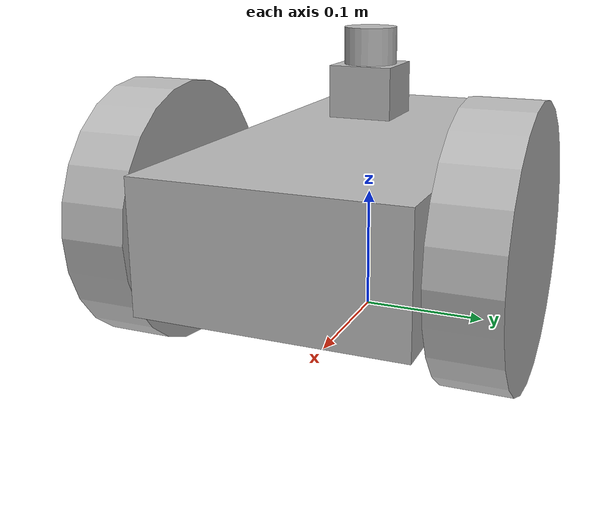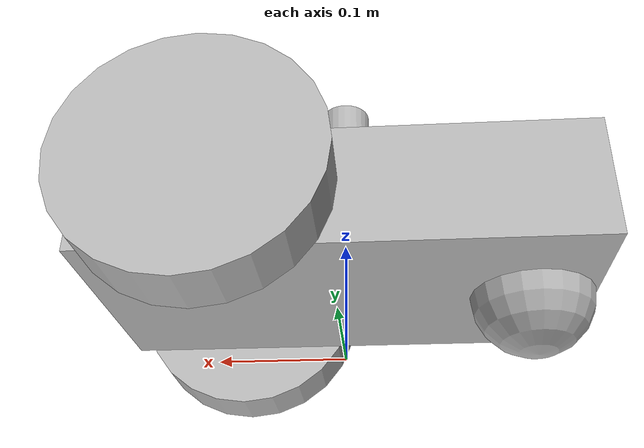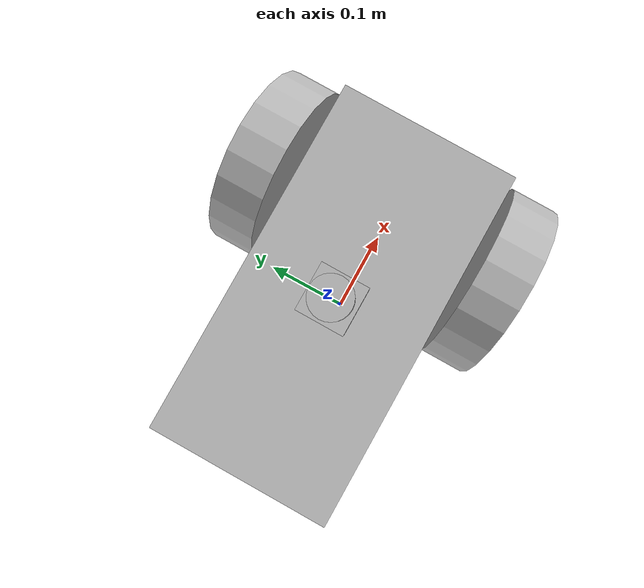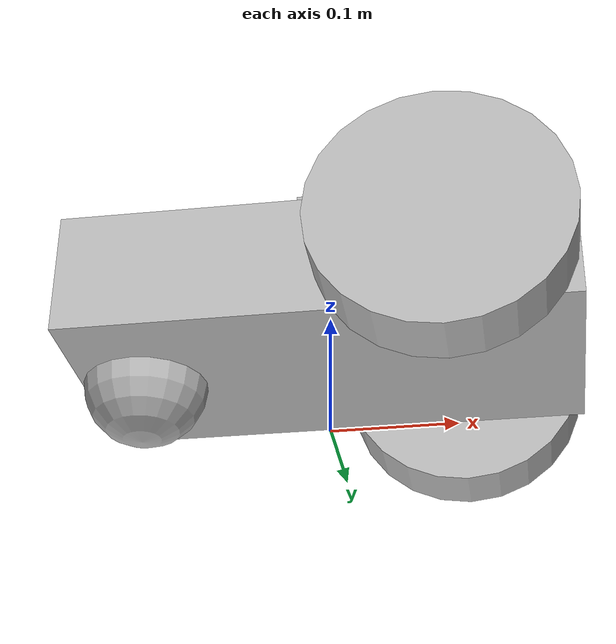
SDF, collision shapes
<?xml version='1.0'?>

<sdf version='1.4'>

    <model name="rover">

        <static>false</static>
        <link name='base_link'>
            <pose>0.0 0.0 0.1 0.0 0.0 0.0</pose>

            <visual name='visual'>
                <pose>0.0 0.0 0.0 0.0 0.0 0.0</pose>
                <geometry>
                    <box>
                        <size>0.4 0.2 0.1</size>
                    </box>
                </geometry>
            </visual>

            <collision name='collision'>
                <geometry>
                    <box>
                        <size>0.4 0.2 0.1</size>
                    </box>
                </geometry>
            </collision>

            <inertial>
                <mass>10.0</mass>
                <pose>0.0 0.0 0.1 0.0 0.0 0.0</pose>
                <inertia>
                    <ixx>0.5</ixx>
                    <iyy>1.0</iyy>
                    <izz>0.1</izz>
                </inertia>
            </inertial>

            <visual name='caster_visual'>
                <pose>-0.15 0.0 -0.05 0.0 0.0 0.0</pose>
                <geometry>
                    <sphere>
                        <radius>0.05</radius>
                    </sphere>
                </geometry>
            </visual>

            <collision name='caster_collision'>
                <pose>-0.15 0.0 -0.05 0.0 0.0 0.0</pose>
                <geometry>
                    <sphere>
                        <radius>0.05</radius>
                    </sphere>
                </geometry>

                <surface>
                    <friction>
                        <ode>
                            <mu>0.0</mu>
                            <mu2>0.0</mu2>
                            <slip1>1.0</slip1>
                            <slip2>1.0</slip2>
                        </ode>
                    </friction>
                </surface>
            </collision>
        </link>

        <link name="left_wheel_link">
            <pose>0.1 0.13 0.1 0.0 1.5707 1.5707</pose>
            <visual name="visual">
                <geometry>
                    <cylinder>
                        <radius>0.1</radius>
                        <length>0.05</length>
                    </cylinder>
                </geometry>
            </visual>

            <collision name="collision">
                <geometry>
                    <cylinder>
                        <radius>0.1</radius>
                        <length>0.05</length>
                    </cylinder>
                </geometry>
            </collision>
        </link>

        <link name="right_wheel_link">
            <pose>0.1 -0.13 0.1 0.0 1.5707 1.5707</pose>

            <visual name="visual">
                <geometry>
                    <cylinder>
                        <radius>0.1</radius>
                        <length>0.05</length>
                    </cylinder>
                </geometry>
            </visual>

            <collision name="collision">
                <geometry>
                    <cylinder>
                        <radius>0.1</radius>
                        <length>0.05</length>
                    </cylinder>
                </geometry>
            </collision>
        </link>

        <link name="laser_link">
            <inertial>
                <mass>0.1</mass>
            </inertial>
            <pose>0.0 0.0 0.2 0.0 0.0 3.141</pose>

            <visual name="visual">
                <geometry>
                    <mesh>
                        <uri>model://hokuyo/meshes/hokuyo.dae</uri>
                    </mesh>
                </geometry>
            </visual>
            <collision name="collision-base">
                <pose>0 0 -0.0145 0 0 0</pose>
                <geometry>
                    <box>
                        <size>0.05 0.05 0.041</size>
                    </box>
                </geometry>
            </collision>
            <collision name="collision-top">
                <pose>0 0 0.0205 0 0 0</pose>
                <geometry>
                    <cylinder>
                        <radius>0.021</radius>
                        <length>0.029</length>
                    </cylinder>
                </geometry>
            </collision>
            <sensor name="laser" type="ray">
                <pose>0.01 0 0.0175 0 -0 0</pose>
                <ray>
                    <scan>
                        <horizontal>
                            <samples>714</samples>
                            <resolution>1</resolution>
                            <min_angle>-1.57080</min_angle>
                            <max_angle>1.57080</max_angle>
                        </horizontal>
                    </scan>
                    <range>
                        <min>0.08</min>
                        <max>10</max>
                        <resolution>0.01</resolution>
                    </range>
                </ray>
                <always_on>1</always_on>
                <update_rate>10</update_rate>
                <visualize>true</visualize>

                <plugin name='laser' filename='libgazebo_ros_ray_sensor.so'>
                    <ros>
                        <namespace>/rover</namespace>
                        <argument>--ros-args --remap ~/out:=scan</argument>
                    </ros>
                    <output_type>sensor_msgs/LaserScan</output_type>
                </plugin>
            </sensor>
        </link>

        <joint name="left_wheel_joint" type="revolute">
            <pose>0.0 0.0 -0.03 0.0 0.0 0.0</pose>
            <parent>base_link</parent>
            <child>left_wheel_link</child>
            <axis>
                <xyz>0 1 0</xyz>
            </axis>
        </joint>

        <joint name="right_wheel_joint" type="revolute">
            <pose>0 0 0.03 0 0 0</pose>
            <parent>base_link</parent>
            <child>right_wheel_link</child>
            <axis>
                <xyz>0 1 0</xyz>
            </axis>
        </joint>

        <joint type="fixed" name="laser_joint">
            <child>laser_link</child>
            <parent>base_link</parent>
        </joint>

        <plugin name='diff_drive' filename='libgazebo_ros_diff_drive.so'>
            <ros>
                <namespace>/rover</namespace>
                <remapping>cmd_vel:=cmd_vel</remapping>
                <remapping>odom:=odom</remapping>
            </ros>

            <!-- wheels -->
            <left_joint>left_wheel_joint</left_joint>
            <right_joint>right_wheel_joint</right_joint>

            <!-- kinematics -->
            <wheel_separation>0.4</wheel_separation>
            <wheel_diameter>0.2</wheel_diameter>

            <!-- limits -->
            <max_wheel_torque>10</max_wheel_torque>
            <max_wheel_acceleration>1.0</max_wheel_acceleration>

            <!-- output -->
            <publish_odom>true</publish_odom>
            <publish_odom_tf>true</publish_odom_tf>
            <publish_wheel_tf>true</publish_wheel_tf>

            <odometry_frame>odom</odometry_frame>
            <robot_base_frame>chassis</robot_base_frame>
        </plugin>
    </model>
</sdf>
